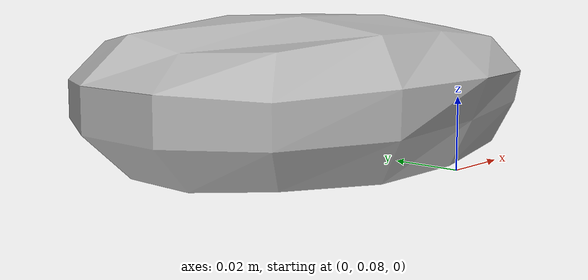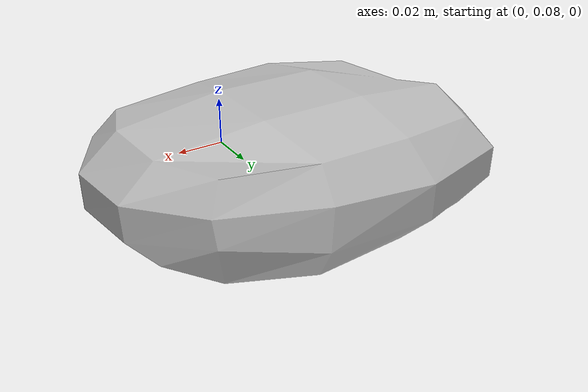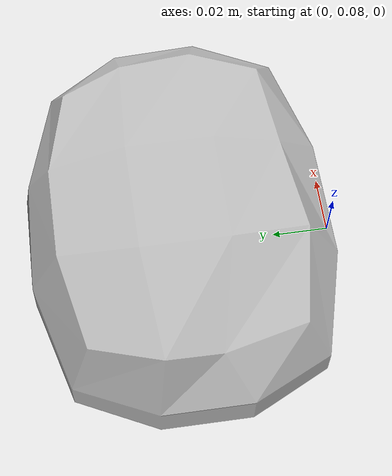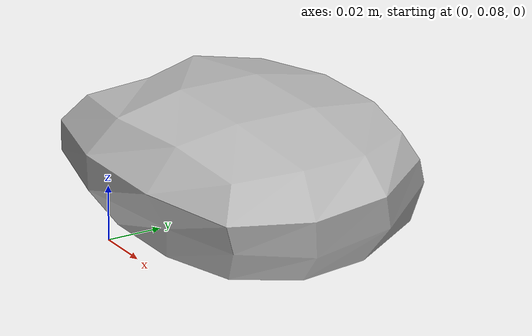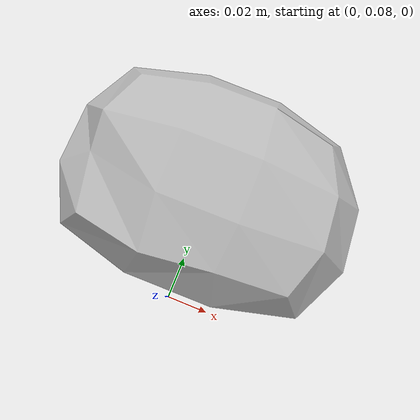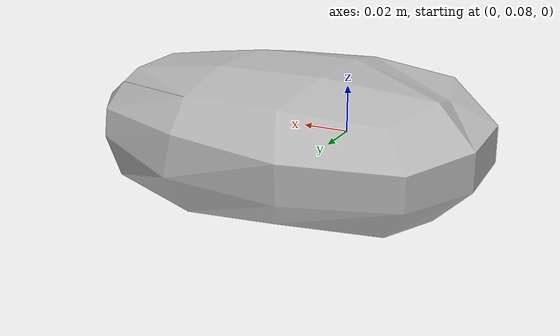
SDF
<?xml version="1.0" ?>
<sdf version="1.4">
	<model name="small_rock">
		<static>true</static>
		<link name="link">
			<pose>0 0 0.0 1.5708 0 0</pose>
			<collision name="collision">
				<geometry>
					<mesh>
						<uri>model://small_rock_3/mesh/rock.dae</uri>
						<scale>0.05 0.05 0.05</scale>
					</mesh>
				</geometry>
				<surface>
					<bounce>
						<restitution_coefficient>0.01</restitution_coefficient>
						<threshold>5.0</threshold>
					</bounce>
					<friction>
						<ode>
							<mu>10</mu>
							<mu2>10</mu2>
						</ode>
					</friction>
					<contact>
						<ode>
							<soft_cfm>0.001</soft_cfm>
							<kp>100000.0</kp>
							<kd>1000.0</kd>
						</ode>
					</contact>
				</surface>
			 </collision>
			<visual name="visual">
				<geometry>
					<mesh>
						<uri>model://small_rock_3/mesh/rock.dae</uri>
						<scale>0.05 0.05 0.05</scale>
					</mesh>
				</geometry>
			</visual>
		</link>
	</model>
</sdf>
